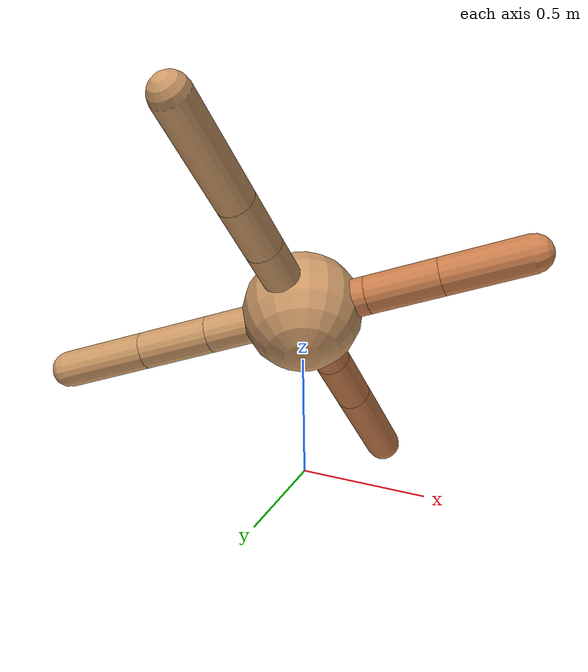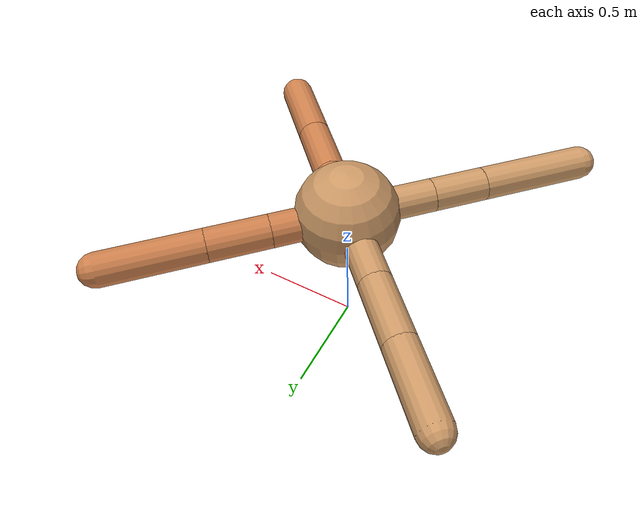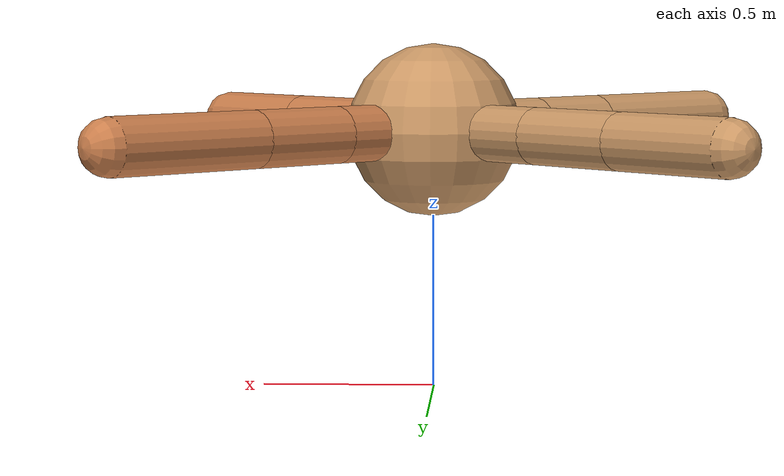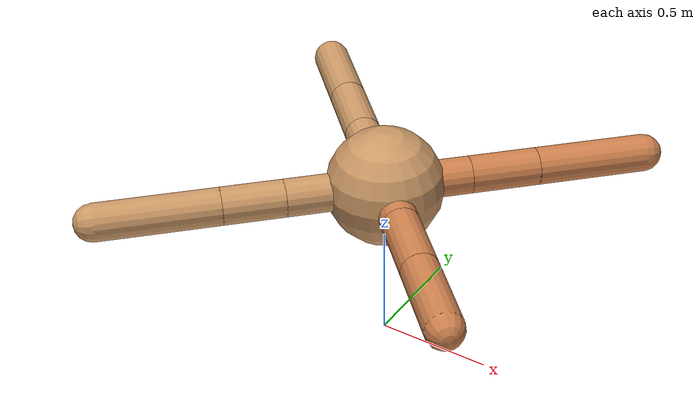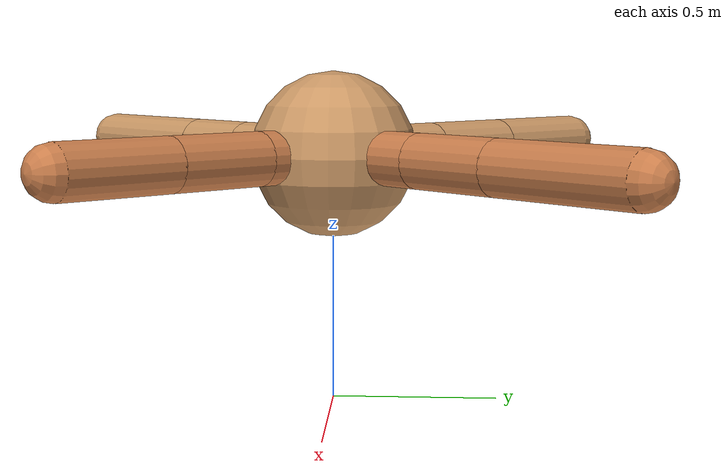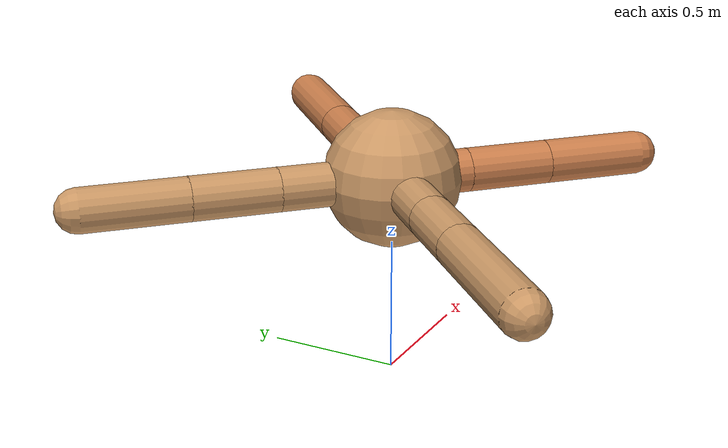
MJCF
<mujoco model="ant">
  <compiler angle="degree" coordinate="local" inertiafromgeom="true" />
  <option integrator="RK4" timestep="0.01" />
  <custom>
    <numeric data="0.0 0.0 0.55 1.0 0.0 0.0 0.0 0.0 1.0 0.0 -1.0 0.0 -1.0 0.0 1.0" name="init_qpos" />
  </custom>
  <default>
    <joint armature="1" damping="1" limited="true" />
    <geom conaffinity="0" condim="3" density="5.0" friction="1.5 0.1 0.1" margin="0.01" rgba="0.8 0.6 0.4 1" />
  </default>
  <worldbody>
    <body name="torso" pos="0 0 0.75">
      <geom name="torso_geom" pos="0 0 0" size="0.25" type="sphere" />

      <body name="front_left_leg" pos="0 0 0">
        <geom fromto="0.0 0.0 0.0 0.25660954672873976 0.25660954672873976 0.0" name="aux_1_geom" size="0.08" type="capsule" rgba=".8 .5 .3 1" />
        <body name="aux_1" pos="0.25660954672873976 0.25660954672873976 0.0">
          <joint axis="0 0 1" name="hip_1" pos="0.0 0.0 0.0" range="-40 40" type="hinge" />
          <geom fromto="0.0 0.0 0.0 0.20692060429879822 0.20692060429879822 0.0" name="left_leg_geom" size="0.08" type="capsule" rgba=".8 .5 .3 1" />
          <body pos="0.20692060429879822 0.20692060429879822 0.0" name="front_left_foot">
            <joint axis="-1 1 0" name="ankle_1" pos="0.0 0.0 0.0" range="30 100" type="hinge" />
            <geom fromto="0.0 0.0 0.0 0.33734429211920725 0.33734429211920725 0.0" name="left_ankle_geom" size="0.08" type="capsule" rgba=".8 .5 .3 1" />
          </body>
        </body>
      </body>
      <body name="front_right_leg" pos="0 0 0">
        <geom fromto="0.0 0.0 0.0 -0.2960354815545083 0.2960354815545083 0.0" name="aux_2_geom" size="0.08" type="capsule" />
        <body name="aux_2" pos="-0.2960354815545083 0.2960354815545083 0.0">
          <joint axis="0 0 1" name="hip_2" pos="0.0 0.0 0.0" range="-40 40" type="hinge" />
          <geom fromto="0.0 0.0 0.0 -0.22204198585420676 0.22204198585420676 0.0" name="right_leg_geom" size="0.08" type="capsule" />
          <body pos="-0.22204198585420676 0.22204198585420676 0.0" name="front_right_foot">
            <joint axis="1 1 0" name="ankle_2" pos="0.0 0.0 0.0" range="-100 -30" type="hinge" />
            <geom fromto="0.0 0.0 0.0 -0.26897192461231223 0.26897192461231223 0.0" name="right_ankle_geom" size="0.08" type="capsule" />
          </body>
        </body>
      </body>
      <body name="left_back_leg" pos="0 0 0">
        <geom fromto="0.0 0.0 0.0 -0.29762639586005124 -0.29762639586005124 0.0" name="aux_3_geom" size="0.08" type="capsule" />
        <body name="aux_3" pos="-0.29762639586005124 -0.29762639586005124 0.0">
          <joint axis="0 0 1" name="hip_3" pos="0.0 0.0 0.0" range="-40 40" type="hinge" />
          <geom fromto="0.0 0.0 0.0 -0.18562821662878456 -0.18562821662878456 0.0" name="back_leg_geom" size="0.08" type="capsule" />
          <body pos="-0.18562821662878456 -0.18562821662878456 0.0" name="left_back_foot">
            <joint axis="-1 1 0" name="ankle_3" pos="0.0 0.0 0.0" range="-100 -30" type="hinge" />
            <geom fromto="0.0 0.0 0.0 -0.3645704553762704 -0.3645704553762704 0.0" name="third_ankle_geom" size="0.08" type="capsule" />
          </body>
        </body>
      </body>
      <body name="right_back_leg" pos="0 0 0">
        <geom fromto="0.0 0.0 0.0 0.20114686880136534 -0.20114686880136534 0.0" name="aux_4_geom" size="0.08" type="capsule" rgba=".8 .5 .3 1" />
        <body name="aux_4" pos="0.20114686880136534 -0.20114686880136534 0.0">
          <joint axis="0 0 1" name="hip_4" pos="0.0 0.0 0.0" range="-40 40" type="hinge" />
          <geom fromto="0.0 0.0 0.0 0.21762762805748703 -0.21762762805748703 0.0" name="rightback_leg_geom" size="0.08" type="capsule" rgba=".8 .5 .3 1" />
          <body pos="0.21762762805748703 -0.21762762805748703 0.0" name="right_back_foot">
            <joint axis="1 1 0" name="ankle_4" pos="0.0 0.0 0.0" range="30 100" type="hinge" />
            <geom fromto="0.0 0.0 0.0 0.25745506579880617 -0.25745506579880617 0.0" name="fourth_ankle_geom" size="0.08" type="capsule" rgba=".8 .5 .3 1" />
          </body>
        </body>
      </body>
    </body>
  </worldbody>
  <actuator>
    <motor ctrllimited="true" ctrlrange="-1.0 1.0" joint="hip_4" gear="150" />
    <motor ctrllimited="true" ctrlrange="-1.0 1.0" joint="ankle_4" gear="150" />
    <motor ctrllimited="true" ctrlrange="-1.0 1.0" joint="hip_1" gear="150" />
    <motor ctrllimited="true" ctrlrange="-1.0 1.0" joint="ankle_1" gear="150" />
    <motor ctrllimited="true" ctrlrange="-1.0 1.0" joint="hip_2" gear="150" />
    <motor ctrllimited="true" ctrlrange="-1.0 1.0" joint="ankle_2" gear="150" />
    <motor ctrllimited="true" ctrlrange="-1.0 1.0" joint="hip_3" gear="150" />
    <motor ctrllimited="true" ctrlrange="-1.0 1.0" joint="ankle_3" gear="150" />
  </actuator>
</mujoco>
